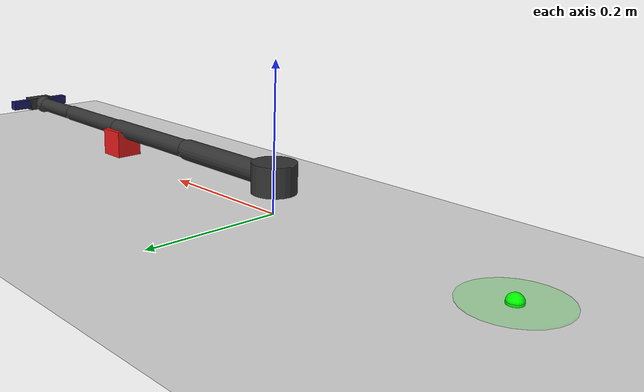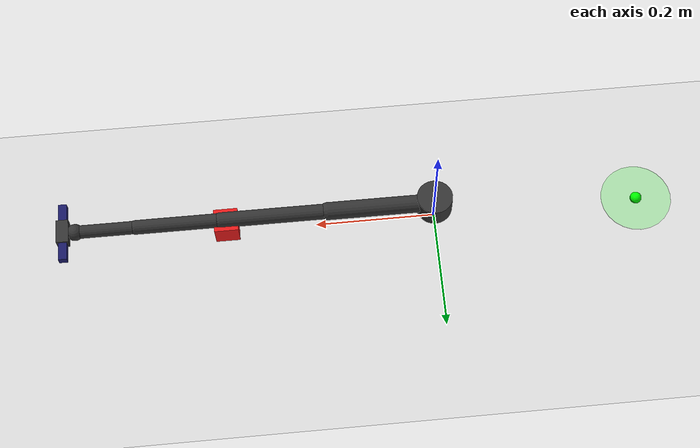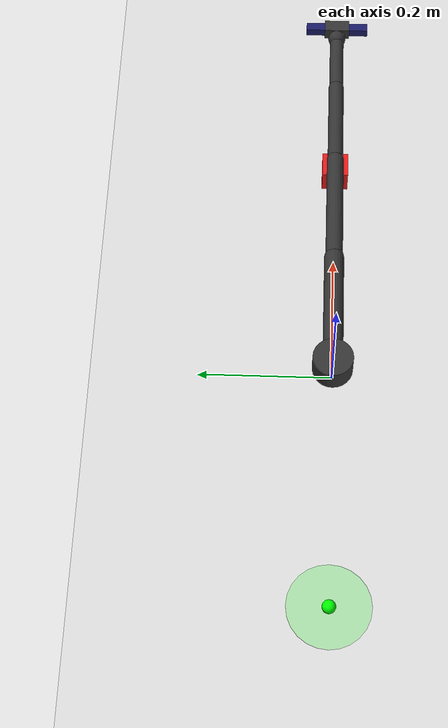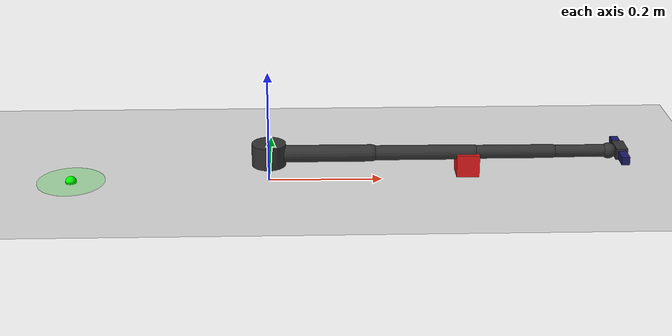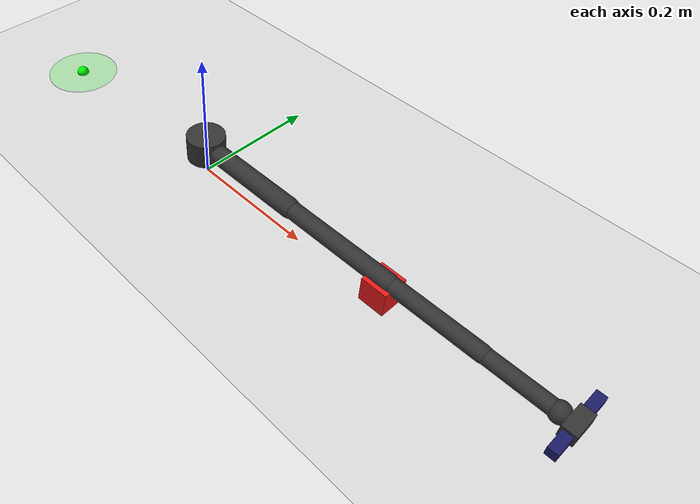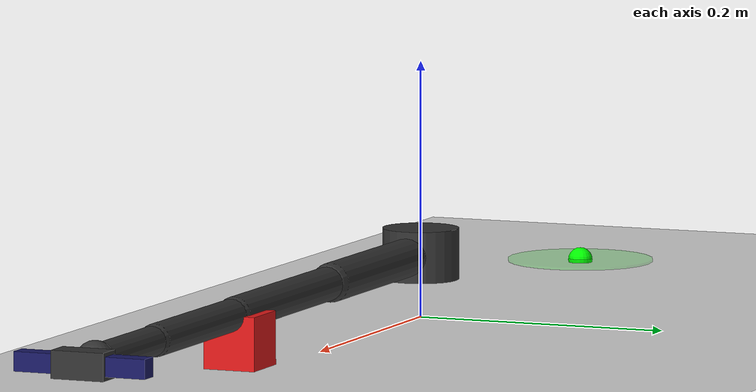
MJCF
<mujoco model="planar_pick_place">
  <compiler angle="radian" coordinate="local"/>
  <option timestep="0.002" gravity="0 0 -9.81" integrator="RK4"/>
  <size njmax="2000" nconmax="200"/>

  <default>
    <joint limited="true" damping="1" armature="0.01"/>
    <geom friction="1 0.005 0.0001" solref="0.02 1" solimp="0.9 0.95 0.001" condim="4"/>
    <motor ctrllimited="true" ctrlrange="-1 1"/>
    <position ctrllimited="true" ctrlrange="-1 1"/>
  </default>

  <asset>
    <material name="mat_floor" rgba="0.85 0.85 0.85 1"/>
    <material name="mat_arm"   rgba="0.2 0.2 0.2 1"/>
    <material name="mat_fing"  rgba="0.1 0.1 0.4 1"/>
    <material name="mat_cube"  rgba="0.9 0.1 0.1 1"/>
    <material name="mat_goal"  rgba="0.1 0.9 0.1 0.25"/>
  </asset>

  <worldbody>
    <!-- Floor -->
    <geom name="floor" type="plane" size="2 2 0.1" material="mat_floor"/>

    <!-- Goal marker (visual only) -->
    <body name="goal" pos="-0.35 0 0.001">
      <geom name="goal_marker" type="cylinder" size="0.06 0.001" material="mat_goal" contype="0" conaffinity="0"/>
      <site name="goal_site" pos="0 0 0.0" size="0.01" rgba="0 1 0 1"/>
    </body>

    <!-- Cube -->
    <body name="cube" pos="0.35 0 0.03">
      <freejoint/>
      <geom name="cube_geom" type="box" size="0.02 0.02 0.02" material="mat_cube" density="800"/>
      <site name="cube_site" pos="0 0 0" size="0.008" rgba="1 0 0 1"/>
    </body>

    <!-- Robot -->
    <body name="base" pos="0 0 0.05">
      <!-- keep base above plane a bit -->
      <geom type="cylinder" size="0.03 0.02" material="mat_arm" density="1000"/>

      <!-- Link 1 -->
      <body name="link1" pos="0 0 0">
        <joint name="j1" type="hinge" axis="0 0 1" range="-3.14 3.14"/>
        <geom name="l1" type="capsule" fromto="0 0 0 0.18 0 0" size="0.015" material="mat_arm" density="600"/>

        <!-- Link 2 -->
        <body name="link2" pos="0.18 0 0">
          <joint name="j2" type="hinge" axis="0 0 1" range="-3.14 3.14"/>
          <geom name="l2" type="capsule" fromto="0 0 0 0.18 0 0" size="0.013" material="mat_arm" density="600"/>

          <!-- Link 3 -->
          <body name="link3" pos="0.18 0 0">
            <joint name="j3" type="hinge" axis="0 0 1" range="-3.14 3.14"/>
            <geom name="l3" type="capsule" fromto="0 0 0 0.14 0 0" size="0.012" material="mat_arm" density="600"/>

            <!-- Link 4 -->
            <body name="link4" pos="0.14 0 0">
              <joint name="j4" type="hinge" axis="0 0 1" range="-3.14 3.14"/>
              <geom name="l4" type="capsule" fromto="0 0 0 0.10 0 0" size="0.011" material="mat_arm" density="600"/>

              <!-- Wrist / gripper base -->
              <body name="wrist" pos="0.10 0 0">
                <geom name="wrist_geom" type="sphere" size="0.014" material="mat_arm" density="600"/>

                <!-- End-effector site -->
                <site name="ee_site" pos="0.02 0 0" size="0.01" rgba="0 0 1 1"/>

                <!-- Single DOF gripper: one slider drives both fingers via equality -->
                <body name="gripper" pos="0.02 0 0">
                  <!-- central mount -->
                  <geom type="box" size="0.01 0.02 0.01" material="mat_arm" density="400"/>

                  <!-- master slider joint: positive opens (moves +y) -->
                  <joint name="grip" type="slide" axis="0 1 0" range="-0.02 0.02" damping="2"/>

                  <!-- Right finger (moves with grip) -->
                  <body name="finger_r" pos="0 0 0">
                    <geom name="finger_r_geom" type="box" pos="0 0.03 0" size="0.007 0.02 0.007" material="mat_fing" density="300"/>
                  </body>

                  <!-- Left finger: mirrored using equality constraint -->
                  <body name="finger_l" pos="0 0 0">
                    <!-- dummy joint that will be constrained to -grip -->
                    <joint name="grip_mirror" type="slide" axis="0 1 0" range="-0.02 0.02" damping="2"/>
                    <geom name="finger_l_geom" type="box" pos="0 -0.03 0" size="0.007 0.02 0.007" material="mat_fing" density="300"/>
                  </body>
                </body>
              </body>
            </body>
          </body>
        </body>
      </body>
    </body>
  </worldbody>

  <!-- Mirror the left finger joint to be the negative of grip -->
  <equality>
    <joint name="mirror_grip" joint1="grip" joint2="grip_mirror" polycoef="0 -1 0 0 0"/>
  </equality>

  <actuator>
    <!-- Simple torque motors on arm joints -->
    <position name="a1" joint="j1" kp="60" ctrlrange="-3.14 3.14"/>
    <position name="a2" joint="j2" kp="60" ctrlrange="-3.14 3.14"/>
    <position name="a3" joint="j3" kp="50" ctrlrange="-3.14 3.14"/>
    <position name="a4" joint="j4" kp="40" ctrlrange="-3.14 3.14"/>

    <!-- Position actuator for gripper (stable) -->
    <position name="grip_pos" joint="grip" kp="200" ctrlrange="-0.02 0.02"/>
  </actuator>
</mujoco>
